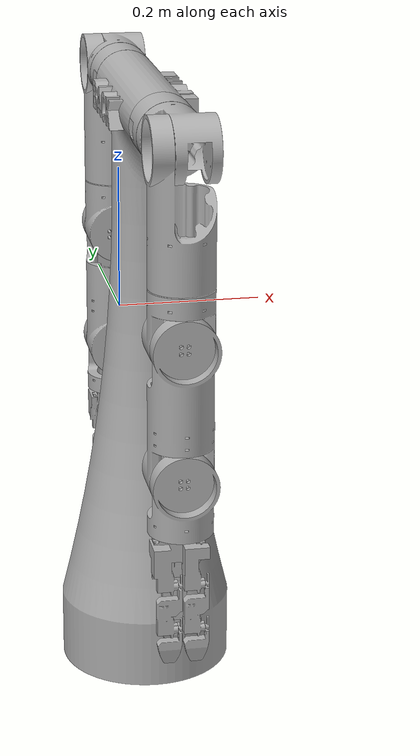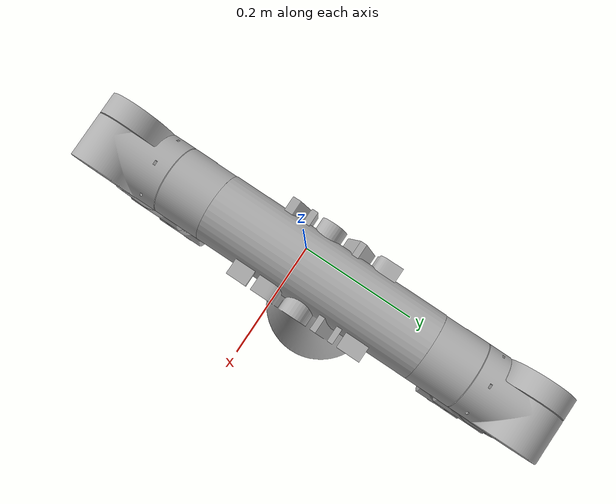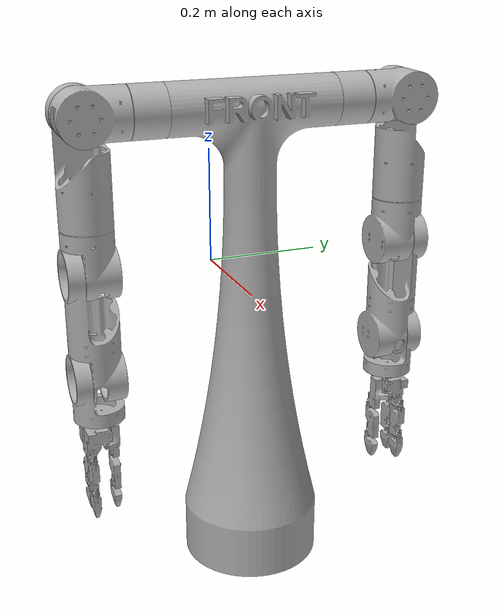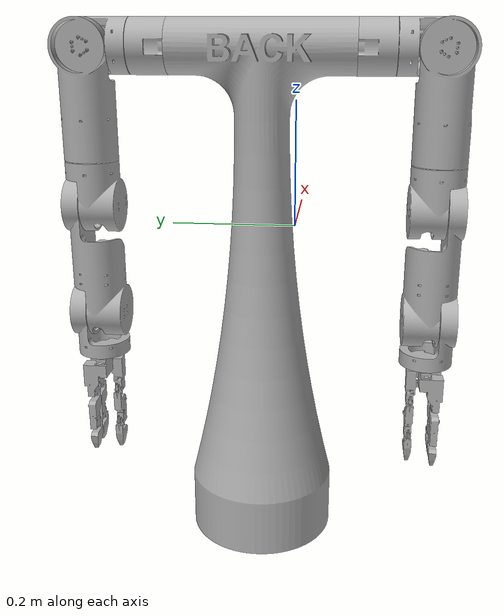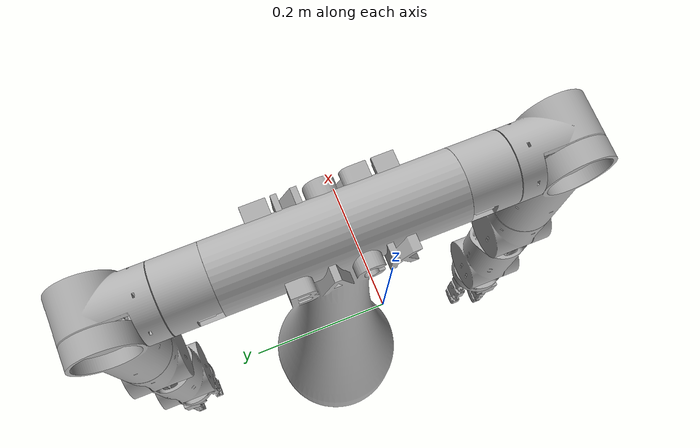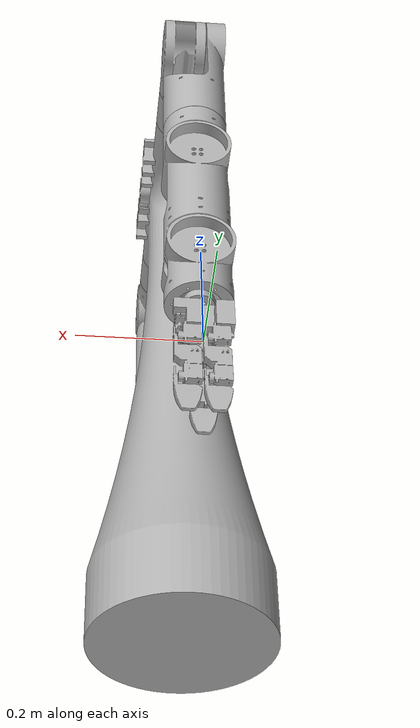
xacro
<?xml version="1.0" ?>
<robot name="Humanoid_Assembly_Beta" xmlns:xacro="http://www.ros.org/wiki/xacro">

<xacro:include filename="$(find Humanoid_Assembly_Beta_description)/urdf/materials.xacro" />
<xacro:include filename="$(find Humanoid_Assembly_Beta_description)/urdf/Humanoid_Assembly_Beta.trans" />
<xacro:include filename="$(find Humanoid_Assembly_Beta_description)/urdf/Humanoid_Assembly_Beta.gazebo" />
<link name="base_link">
  <inertial>
    <origin xyz="0.0450240768402649 0.05807866776862132 -0.2619627402680465" rpy="0 0 0"/>
    <mass value="18.851802819553264"/>
    <inertia ixx="1.424617" iyy="1.411084" izz="0.101714" ixy="2.5e-05" iyz="-2e-06" ixz="-0.000262"/>
  </inertial>
  <visual>
    <origin xyz="0 0 0" rpy="0 0 0"/>
    <geometry>
      <mesh filename="package://Humanoid_Assembly_Beta_description/meshes/base_link.stl" scale="0.001 0.001 0.001"/>
    </geometry>
    <material name="silver"/>
  </visual>
  <collision>
    <origin xyz="0 0 0" rpy="0 0 0"/>
    <geometry>
      <mesh filename="package://Humanoid_Assembly_Beta_description/meshes/base_link.stl" scale="0.001 0.001 0.001"/>
    </geometry>
  </collision>
</link>

<link name="R_shoulder_pitch_1">
  <inertial>
    <origin xyz="0.001431847493942949 -0.022701902408464134 2.2421150814300184e-06" rpy="0 0 0"/>
    <mass value="0.11098118237499341"/>
    <inertia ixx="0.000122" iyy="0.00016" izz="0.000115" ixy="-1e-06" iyz="-0.0" ixz="0.0"/>
  </inertial>
  <visual>
    <origin xyz="-0.045 0.091922 -0.277653" rpy="0 0 0"/>
    <geometry>
      <mesh filename="package://Humanoid_Assembly_Beta_description/meshes/R_shoulder_pitch_1.stl" scale="0.001 0.001 0.001"/>
    </geometry>
    <material name="silver"/>
  </visual>
  <collision>
    <origin xyz="-0.045 0.091922 -0.277653" rpy="0 0 0"/>
    <geometry>
      <mesh filename="package://Humanoid_Assembly_Beta_description/meshes/R_shoulder_pitch_1.stl" scale="0.001 0.001 0.001"/>
    </geometry>
  </collision>
</link>

<link name="R_shoulder_roll_1">
  <inertial>
    <origin xyz="0.013259930820804476 -0.4646711613933503 0.557509213360208" rpy="0 0 0"/>
    <mass value="0.2272336659585354"/>
    <inertia ixx="0.000452" iyy="0.000321" izz="0.000431" ixy="8.7e-05" iyz="1.7e-05" ixz="-1e-06"/>
  </inertial>
  <visual>
    <origin xyz="-0.045 -0.268078 0.277653" rpy="0 0 0"/>
    <geometry>
      <mesh filename="package://Humanoid_Assembly_Beta_description/meshes/R_shoulder_roll_1.stl" scale="0.001 0.001 0.001"/>
    </geometry>
    <material name="silver"/>
  </visual>
  <collision>
    <origin xyz="-0.045 -0.268078 0.277653" rpy="0 0 0"/>
    <geometry>
      <mesh filename="package://Humanoid_Assembly_Beta_description/meshes/R_shoulder_roll_1.stl" scale="0.001 0.001 0.001"/>
    </geometry>
  </collision>
</link>

<link name="R_shoulder_yaw_1">
  <inertial>
    <origin xyz="0.003502019027009695 -0.5819363490480399 0.470694036281082" rpy="0 0 0"/>
    <mass value="0.4082589760873575"/>
    <inertia ixx="0.001504" iyy="0.001506" izz="0.000502" ixy="-1.8e-05" iyz="-6e-06" ixz="0.000207"/>
  </inertial>
  <visual>
    <origin xyz="-0.03 -0.355078 0.277653" rpy="0 0 0"/>
    <geometry>
      <mesh filename="package://Humanoid_Assembly_Beta_description/meshes/R_shoulder_yaw_1.stl" scale="0.001 0.001 0.001"/>
    </geometry>
    <material name="silver"/>
  </visual>
  <collision>
    <origin xyz="-0.03 -0.355078 0.277653" rpy="0 0 0"/>
    <geometry>
      <mesh filename="package://Humanoid_Assembly_Beta_description/meshes/R_shoulder_yaw_1.stl" scale="0.001 0.001 0.001"/>
    </geometry>
  </collision>
</link>

<link name="R_upper_arm_1">
  <inertial>
    <origin xyz="-6.377857612129001e-06 -0.5714932783086877 0.14047083130053528" rpy="0 0 0"/>
    <mass value="0.2997392570576707"/>
    <inertia ixx="0.000527" iyy="0.000575" izz="0.000389" ixy="-0.0" iyz="0.000102" ixz="8e-06"/>
  </inertial>
  <visual>
    <origin xyz="-0.047 -0.355078 0.094653" rpy="0 0 0"/>
    <geometry>
      <mesh filename="package://Humanoid_Assembly_Beta_description/meshes/R_upper_arm_1.stl" scale="0.001 0.001 0.001"/>
    </geometry>
    <material name="silver"/>
  </visual>
  <collision>
    <origin xyz="-0.047 -0.355078 0.094653" rpy="0 0 0"/>
    <geometry>
      <mesh filename="package://Humanoid_Assembly_Beta_description/meshes/R_upper_arm_1.stl" scale="0.001 0.001 0.001"/>
    </geometry>
  </collision>
</link>

<link name="R_under_arm_1">
  <inertial>
    <origin xyz="-0.0028604109654717103 -0.6012341612438592 -0.06824420538162339" rpy="0 0 0"/>
    <mass value="0.49344130187842516"/>
    <inertia ixx="0.002561" iyy="0.002494" izz="0.000735" ixy="1.1e-05" iyz="0.000589" ixz="1.4e-05"/>
  </inertial>
  <visual>
    <origin xyz="-0.047 -0.370081 0.017653" rpy="0 0 0"/>
    <geometry>
      <mesh filename="package://Humanoid_Assembly_Beta_description/meshes/R_under_arm_1.stl" scale="0.001 0.001 0.001"/>
    </geometry>
    <material name="silver"/>
  </visual>
  <collision>
    <origin xyz="-0.047 -0.370081 0.017653" rpy="0 0 0"/>
    <geometry>
      <mesh filename="package://Humanoid_Assembly_Beta_description/meshes/R_under_arm_1.stl" scale="0.001 0.001 0.001"/>
    </geometry>
  </collision>
</link>

<link name="R_wrist_pitch_1">
  <inertial>
    <origin xyz="-0.0010012110795195595 -0.6098929657579838 -0.3809034584571842" rpy="0 0 0"/>
    <mass value="0.2202566374266439"/>
    <inertia ixx="0.00039" iyy="0.000411" izz="0.000247" ixy="0.0" iyz="8.3e-05" ixz="-0.0"/>
  </inertial>
  <visual>
    <origin xyz="-0.047 -0.370078 -0.171347" rpy="0 0 0"/>
    <geometry>
      <mesh filename="package://Humanoid_Assembly_Beta_description/meshes/R_wrist_pitch_1.stl" scale="0.001 0.001 0.001"/>
    </geometry>
    <material name="silver"/>
  </visual>
  <collision>
    <origin xyz="-0.047 -0.370078 -0.171347" rpy="0 0 0"/>
    <geometry>
      <mesh filename="package://Humanoid_Assembly_Beta_description/meshes/R_wrist_pitch_1.stl" scale="0.001 0.001 0.001"/>
    </geometry>
  </collision>
</link>

<link name="R_wrist_yaw_1">
  <inertial>
    <origin xyz="-0.005277979725099913 -0.010013884885821417 -0.03599913171465599" rpy="0 0 0"/>
    <mass value="0.12084160606563477"/>
    <inertia ixx="5.7e-05" iyy="9.5e-05" izz="6.8e-05" ixy="-1e-06" iyz="-1.2e-05" ixz="-2e-06"/>
  </inertial>
  <visual>
    <origin xyz="-0.046 0.226921 0.249347" rpy="0 0 0"/>
    <geometry>
      <mesh filename="package://Humanoid_Assembly_Beta_description/meshes/R_wrist_yaw_1.stl" scale="0.001 0.001 0.001"/>
    </geometry>
    <material name="silver"/>
  </visual>
  <collision>
    <origin xyz="-0.046 0.226921 0.249347" rpy="0 0 0"/>
    <geometry>
      <mesh filename="package://Humanoid_Assembly_Beta_description/meshes/R_wrist_yaw_1.stl" scale="0.001 0.001 0.001"/>
    </geometry>
  </collision>
</link>

<link name="R_rotation_base_1">
  <inertial>
    <origin xyz="-0.05678328727139368 -0.2730161482658747 0.1824344278145924" rpy="0 0 0"/>
    <mass value="0.02648965070604941"/>
    <inertia ixx="9e-06" iyy="1e-05" izz="2e-06" ixy="0.0" iyz="0.0" ixz="-1e-06"/>
  </inertial>
  <visual>
    <origin xyz="-0.106561 -0.068184 0.481181" rpy="0 0 0"/>
    <geometry>
      <mesh filename="package://Humanoid_Assembly_Beta_description/meshes/R_rotation_base_1.stl" scale="0.001 0.001 0.001"/>
    </geometry>
    <material name="silver"/>
  </visual>
  <collision>
    <origin xyz="-0.106561 -0.068184 0.481181" rpy="0 0 0"/>
    <geometry>
      <mesh filename="package://Humanoid_Assembly_Beta_description/meshes/R_rotation_base_1.stl" scale="0.001 0.001 0.001"/>
    </geometry>
  </collision>
</link>

<link name="R_finger_1_link1_1">
  <inertial>
    <origin xyz="-0.05181121522086529 -0.341682554166278 0.1379541156016607" rpy="0 0 0"/>
    <mass value="0.023444699208689017"/>
    <inertia ixx="8e-06" iyy="9e-06" izz="2e-06" ixy="-0.0" iyz="0.0" ixz="-1e-06"/>
  </inertial>
  <visual>
    <origin xyz="-0.114335 -0.094747 0.503268" rpy="0 0 0"/>
    <geometry>
      <mesh filename="package://Humanoid_Assembly_Beta_description/meshes/R_finger_1_link1_1.stl" scale="0.001 0.001 0.001"/>
    </geometry>
    <material name="silver"/>
  </visual>
  <collision>
    <origin xyz="-0.114335 -0.094747 0.503268" rpy="0 0 0"/>
    <geometry>
      <mesh filename="package://Humanoid_Assembly_Beta_description/meshes/R_finger_1_link1_1.stl" scale="0.001 0.001 0.001"/>
    </geometry>
  </collision>
</link>

<link name="R_finger_2_link1_1">
  <inertial>
    <origin xyz="-0.05181121522086536 -0.34168255416627785 0.1379541156016606" rpy="0 0 0"/>
    <mass value="0.023444699208689017"/>
    <inertia ixx="8e-06" iyy="9e-06" izz="2e-06" ixy="-0.0" iyz="0.0" ixz="-1e-06"/>
  </inertial>
  <visual>
    <origin xyz="-0.077335 -0.094747 0.503268" rpy="0 0 0"/>
    <geometry>
      <mesh filename="package://Humanoid_Assembly_Beta_description/meshes/R_finger_2_link1_1.stl" scale="0.001 0.001 0.001"/>
    </geometry>
    <material name="silver"/>
  </visual>
  <collision>
    <origin xyz="-0.077335 -0.094747 0.503268" rpy="0 0 0"/>
    <geometry>
      <mesh filename="package://Humanoid_Assembly_Beta_description/meshes/R_finger_2_link1_1.stl" scale="0.001 0.001 0.001"/>
    </geometry>
  </collision>
</link>

<link name="R_finger_3_link1_1">
  <inertial>
    <origin xyz="0.20984516707626316 -0.2851357788580128 -0.030044640390408106" rpy="0 0 0"/>
    <mass value="0.028756392059338477"/>
    <inertia ixx="9e-06" iyy="1.1e-05" izz="3e-06" ixy="-0.0" iyz="-0.0" ixz="2e-06"/>
  </inertial>
  <visual>
    <origin xyz="0.166876 -0.081319 0.332845" rpy="0 0 0"/>
    <geometry>
      <mesh filename="package://Humanoid_Assembly_Beta_description/meshes/R_finger_3_link1_1.stl" scale="0.001 0.001 0.001"/>
    </geometry>
    <material name="silver"/>
  </visual>
  <collision>
    <origin xyz="0.166876 -0.081319 0.332845" rpy="0 0 0"/>
    <geometry>
      <mesh filename="package://Humanoid_Assembly_Beta_description/meshes/R_finger_3_link1_1.stl" scale="0.001 0.001 0.001"/>
    </geometry>
  </collision>
</link>

<link name="R_finger_1_link2_1">
  <inertial>
    <origin xyz="0.31571623923205216 -0.3926680363260272 0.03131139756781637" rpy="0 0 0"/>
    <mass value="0.011311880427034342"/>
    <inertia ixx="1e-06" iyy="2e-06" izz="1e-06" ixy="-0.0" iyz="-0.0" ixz="-0.0"/>
  </inertial>
  <visual>
    <origin xyz="0.249986 -0.145747 0.445853" rpy="0 0 0"/>
    <geometry>
      <mesh filename="package://Humanoid_Assembly_Beta_description/meshes/R_finger_1_link2_1.stl" scale="0.001 0.001 0.001"/>
    </geometry>
    <material name="silver"/>
  </visual>
  <collision>
    <origin xyz="0.249986 -0.145747 0.445853" rpy="0 0 0"/>
    <geometry>
      <mesh filename="package://Humanoid_Assembly_Beta_description/meshes/R_finger_1_link2_1.stl" scale="0.001 0.001 0.001"/>
    </geometry>
  </collision>
</link>

<link name="R_finger_2_link2_1">
  <inertial>
    <origin xyz="0.31571623923205216 -0.3926680363260271 -0.005688602432183776" rpy="0 0 0"/>
    <mass value="0.011311880427034342"/>
    <inertia ixx="1e-06" iyy="2e-06" izz="1e-06" ixy="-0.0" iyz="-0.0" ixz="-0.0"/>
  </inertial>
  <visual>
    <origin xyz="0.286986 -0.145747 0.408853" rpy="0 0 0"/>
    <geometry>
      <mesh filename="package://Humanoid_Assembly_Beta_description/meshes/R_finger_2_link2_1.stl" scale="0.001 0.001 0.001"/>
    </geometry>
    <material name="silver"/>
  </visual>
  <collision>
    <origin xyz="0.286986 -0.145747 0.408853" rpy="0 0 0"/>
    <geometry>
      <mesh filename="package://Humanoid_Assembly_Beta_description/meshes/R_finger_2_link2_1.stl" scale="0.001 0.001 0.001"/>
    </geometry>
  </collision>
</link>

<link name="R_finger_3_link2_1">
  <inertial>
    <origin xyz="-0.27279232430265155 0.39265235460993175 -0.021463395633060933" rpy="0 0 0"/>
    <mass value="0.011442120558853228"/>
    <inertia ixx="2e-06" iyy="2e-06" izz="1e-06" ixy="-0.0" iyz="0.0" ixz="0.0"/>
  </inertial>
  <visual>
    <origin xyz="-0.312677 0.596486 0.392745" rpy="0 0 0"/>
    <geometry>
      <mesh filename="package://Humanoid_Assembly_Beta_description/meshes/R_finger_3_link2_1.stl" scale="0.001 0.001 0.001"/>
    </geometry>
    <material name="silver"/>
  </visual>
  <collision>
    <origin xyz="-0.312677 0.596486 0.392745" rpy="0 0 0"/>
    <geometry>
      <mesh filename="package://Humanoid_Assembly_Beta_description/meshes/R_finger_3_link2_1.stl" scale="0.001 0.001 0.001"/>
    </geometry>
  </collision>
</link>

<link name="L_shoulder_pitch_1">
  <inertial>
    <origin xyz="0.0014318676544724726 0.022702466545756 2.1485748469829424e-06" rpy="0 0 0"/>
    <mass value="0.11763993299203501"/>
    <inertia ixx="0.000129" iyy="0.000169" izz="0.000122" ixy="1e-06" iyz="0.0" ixz="0.0"/>
  </inertial>
  <visual>
    <origin xyz="-0.045 -0.208078 -0.277653" rpy="0 0 0"/>
    <geometry>
      <mesh filename="package://Humanoid_Assembly_Beta_description/meshes/L_shoulder_pitch_1.stl" scale="0.001 0.001 0.001"/>
    </geometry>
    <material name="silver"/>
  </visual>
  <collision>
    <origin xyz="-0.045 -0.208078 -0.277653" rpy="0 0 0"/>
    <geometry>
      <mesh filename="package://Humanoid_Assembly_Beta_description/meshes/L_shoulder_pitch_1.stl" scale="0.001 0.001 0.001"/>
    </geometry>
  </collision>
</link>

<link name="L_shoulder_roll_1">
  <inertial>
    <origin xyz="0.013259933663725063 0.04467166637741321 0.002203215179457596" rpy="0 0 0"/>
    <mass value="0.22723337829216886"/>
    <inertia ixx="0.000452" iyy="0.000321" izz="0.000431" ixy="-8.7e-05" iyz="-1.7e-05" ixz="-1e-06"/>
  </inertial>
  <visual>
    <origin xyz="-0.045 -0.268078 -0.277653" rpy="0 0 0"/>
    <geometry>
      <mesh filename="package://Humanoid_Assembly_Beta_description/meshes/L_shoulder_roll_1.stl" scale="0.001 0.001 0.001"/>
    </geometry>
    <material name="silver"/>
  </visual>
  <collision>
    <origin xyz="-0.045 -0.268078 -0.277653" rpy="0 0 0"/>
    <geometry>
      <mesh filename="package://Humanoid_Assembly_Beta_description/meshes/L_shoulder_roll_1.stl" scale="0.001 0.001 0.001"/>
    </geometry>
  </collision>
</link>

<link name="L_shoulder_yaw_1">
  <inertial>
    <origin xyz="0.0035020148983803054 0.007936895047892523 -0.08461195404128696" rpy="0 0 0"/>
    <mass value="0.4082589367033056"/>
    <inertia ixx="0.001504" iyy="0.001506" izz="0.000502" ixy="1.8e-05" iyz="6e-06" ixz="0.000207"/>
  </inertial>
  <visual>
    <origin xyz="-0.03 -0.335078 -0.277653" rpy="0 0 0"/>
    <geometry>
      <mesh filename="package://Humanoid_Assembly_Beta_description/meshes/L_shoulder_yaw_1.stl" scale="0.001 0.001 0.001"/>
    </geometry>
    <material name="silver"/>
  </visual>
  <collision>
    <origin xyz="-0.03 -0.335078 -0.277653" rpy="0 0 0"/>
    <geometry>
      <mesh filename="package://Humanoid_Assembly_Beta_description/meshes/L_shoulder_yaw_1.stl" scale="0.001 0.001 0.001"/>
    </geometry>
  </collision>
</link>

<link name="L_upper_arm_1">
  <inertial>
    <origin xyz="-6.377857726967695e-06 -0.0025061759533775985 -0.048835168703810536" rpy="0 0 0"/>
    <mass value="0.2997392570904695"/>
    <inertia ixx="0.000527" iyy="0.000575" izz="0.000389" ixy="0.0" iyz="-0.000102" ixz="8e-06"/>
  </inertial>
  <visual>
    <origin xyz="-0.047 -0.335078 -0.094653" rpy="0 0 0"/>
    <geometry>
      <mesh filename="package://Humanoid_Assembly_Beta_description/meshes/L_upper_arm_1.stl" scale="0.001 0.001 0.001"/>
    </geometry>
    <material name="silver"/>
  </visual>
  <collision>
    <origin xyz="-0.047 -0.335078 -0.094653" rpy="0 0 0"/>
    <geometry>
      <mesh filename="package://Humanoid_Assembly_Beta_description/meshes/L_upper_arm_1.stl" scale="0.001 0.001 0.001"/>
    </geometry>
  </collision>
</link>

<link name="L_under_arm_1">
  <inertial>
    <origin xyz="-0.0028604116357154735 -0.0027705949647548467 -0.10339720142397496" rpy="0 0 0"/>
    <mass value="0.49344130195861524"/>
    <inertia ixx="0.002561" iyy="0.002494" izz="0.000735" ixy="-1.1e-05" iyz="-0.000589" ixz="1.4e-05"/>
  </inertial>
  <visual>
    <origin xyz="-0.047 -0.350078 -0.017653" rpy="0 0 0"/>
    <geometry>
      <mesh filename="package://Humanoid_Assembly_Beta_description/meshes/L_under_arm_1.stl" scale="0.001 0.001 0.001"/>
    </geometry>
    <material name="silver"/>
  </visual>
  <collision>
    <origin xyz="-0.047 -0.350078 -0.017653" rpy="0 0 0"/>
    <geometry>
      <mesh filename="package://Humanoid_Assembly_Beta_description/meshes/L_under_arm_1.stl" scale="0.001 0.001 0.001"/>
    </geometry>
  </collision>
</link>

<link name="L_wrist_pitch_1">
  <inertial>
    <origin xyz="-0.0010012124206277284 0.007891209552276901 -0.03820944663655462" rpy="0 0 0"/>
    <mass value="0.2202566374266439"/>
    <inertia ixx="0.00039" iyy="0.000411" izz="0.000247" ixy="-0.0" iyz="-8.3e-05" ixz="-0.0"/>
  </inertial>
  <visual>
    <origin xyz="-0.047 -0.348078 0.171041" rpy="0 0 0"/>
    <geometry>
      <mesh filename="package://Humanoid_Assembly_Beta_description/meshes/L_wrist_pitch_1.stl" scale="0.001 0.001 0.001"/>
    </geometry>
    <material name="silver"/>
  </visual>
  <collision>
    <origin xyz="-0.047 -0.348078 0.171041" rpy="0 0 0"/>
    <geometry>
      <mesh filename="package://Humanoid_Assembly_Beta_description/meshes/L_wrist_pitch_1.stl" scale="0.001 0.001 0.001"/>
    </geometry>
  </collision>
</link>

<link name="L_wrist_yaw_1">
  <inertial>
    <origin xyz="-0.005662320002585895 0.010787871196507703 -0.035700892848775145" rpy="0 0 0"/>
    <mass value="0.09961465068967049"/>
    <inertia ixx="4.4e-05" iyy="7.7e-05" izz="5.8e-05" ixy="1e-06" iyz="9e-06" ixz="-2e-06"/>
  </inertial>
  <visual>
    <origin xyz="-0.046 -0.343075 0.249041" rpy="0 0 0"/>
    <geometry>
      <mesh filename="package://Humanoid_Assembly_Beta_description/meshes/L_wrist_yaw_1.stl" scale="0.001 0.001 0.001"/>
    </geometry>
    <material name="silver"/>
  </visual>
  <collision>
    <origin xyz="-0.046 -0.343075 0.249041" rpy="0 0 0"/>
    <geometry>
      <mesh filename="package://Humanoid_Assembly_Beta_description/meshes/L_wrist_yaw_1.stl" scale="0.001 0.001 0.001"/>
    </geometry>
  </collision>
</link>

<link name="L_rotation_base_1">
  <inertial>
    <origin xyz="-0.05622429033214489 -0.3167517099822866 -0.38092097224905075" rpy="0 0 0"/>
    <mass value="0.023316272305764475"/>
    <inertia ixx="8e-06" iyy="9e-06" izz="2e-06" ixy="-0.0" iyz="-0.0" ixz="-1e-06"/>
  </inertial>
  <visual>
    <origin xyz="-0.106561 -0.637874 -0.084947" rpy="0 0 0"/>
    <geometry>
      <mesh filename="package://Humanoid_Assembly_Beta_description/meshes/L_rotation_base_1.stl" scale="0.001 0.001 0.001"/>
    </geometry>
    <material name="silver"/>
  </visual>
  <collision>
    <origin xyz="-0.106561 -0.637874 -0.084947" rpy="0 0 0"/>
    <geometry>
      <mesh filename="package://Humanoid_Assembly_Beta_description/meshes/L_rotation_base_1.stl" scale="0.001 0.001 0.001"/>
    </geometry>
  </collision>
</link>

<link name="L_finger_1_link1_2">
  <inertial>
    <origin xyz="-0.05144863834858844 -0.3013449293913215 -0.4694476391060324" rpy="0 0 0"/>
    <mass value="0.020271320797791224"/>
    <inertia ixx="6e-06" iyy="8e-06" izz="2e-06" ixy="0.0" iyz="-0.0" ixz="-1e-06"/>
  </inertial>
  <visual>
    <origin xyz="-0.114335 -0.664437 -0.107034" rpy="0 0 0"/>
    <geometry>
      <mesh filename="package://Humanoid_Assembly_Beta_description/meshes/L_finger_1_link1_2.stl" scale="0.001 0.001 0.001"/>
    </geometry>
    <material name="silver"/>
  </visual>
  <collision>
    <origin xyz="-0.114335 -0.664437 -0.107034" rpy="0 0 0"/>
    <geometry>
      <mesh filename="package://Humanoid_Assembly_Beta_description/meshes/L_finger_1_link1_2.stl" scale="0.001 0.001 0.001"/>
    </geometry>
  </collision>
</link>

<link name="L_finger_2_link1_1">
  <inertial>
    <origin xyz="-0.05144863837710306 -0.3013449293789549 -0.4694476388856015" rpy="0 0 0"/>
    <mass value="0.02027132065501612"/>
    <inertia ixx="6e-06" iyy="8e-06" izz="2e-06" ixy="0.0" iyz="-0.0" ixz="-1e-06"/>
  </inertial>
  <visual>
    <origin xyz="-0.077335 -0.664437 -0.107034" rpy="0 0 0"/>
    <geometry>
      <mesh filename="package://Humanoid_Assembly_Beta_description/meshes/L_finger_2_link1_1.stl" scale="0.001 0.001 0.001"/>
    </geometry>
    <material name="silver"/>
  </visual>
  <collision>
    <origin xyz="-0.077335 -0.664437 -0.107034" rpy="0 0 0"/>
    <geometry>
      <mesh filename="package://Humanoid_Assembly_Beta_description/meshes/L_finger_2_link1_1.stl" scale="0.001 0.001 0.001"/>
    </geometry>
  </collision>
</link>

<link name="L_finger_3_link1_2">
  <inertial>
    <origin xyz="-0.31405421300210046 -0.35786290130399645 -0.02985870268087204" rpy="0 0 0"/>
    <mass value="0.020271320797791374"/>
    <inertia ixx="6e-06" iyy="8e-06" izz="2e-06" ixy="0.0" iyz="0.0" ixz="1e-06"/>
  </inertial>
  <visual>
    <origin xyz="-0.356946 -0.677834 0.332539" rpy="0 0 0"/>
    <geometry>
      <mesh filename="package://Humanoid_Assembly_Beta_description/meshes/L_finger_3_link1_2.stl" scale="0.001 0.001 0.001"/>
    </geometry>
    <material name="silver"/>
  </visual>
  <collision>
    <origin xyz="-0.356946 -0.677834 0.332539" rpy="0 0 0"/>
    <geometry>
      <mesh filename="package://Humanoid_Assembly_Beta_description/meshes/L_finger_3_link1_2.stl" scale="0.001 0.001 0.001"/>
    </geometry>
  </collision>
</link>

<link name="L_finger_1_link2_1">
  <inertial>
    <origin xyz="-0.2942797621090531 -0.38036171987967277 0.03131140938844579" rpy="0 0 0"/>
    <mass value="0.01131188042703432"/>
    <inertia ixx="1e-06" iyy="2e-06" izz="1e-06" ixy="-0.0" iyz="-0.0" ixz="-0.0"/>
  </inertial>
  <visual>
    <origin xyz="-0.36001 -0.743437 0.445547" rpy="0 0 0"/>
    <geometry>
      <mesh filename="package://Humanoid_Assembly_Beta_description/meshes/L_finger_1_link2_1.stl" scale="0.001 0.001 0.001"/>
    </geometry>
    <material name="silver"/>
  </visual>
  <collision>
    <origin xyz="-0.36001 -0.743437 0.445547" rpy="0 0 0"/>
    <geometry>
      <mesh filename="package://Humanoid_Assembly_Beta_description/meshes/L_finger_1_link2_1.stl" scale="0.001 0.001 0.001"/>
    </geometry>
  </collision>
</link>

<link name="L_finger_2_link2_1">
  <inertial>
    <origin xyz="-0.29427976210905304 -0.3803617198796725 -0.005688590611554467" rpy="0 0 0"/>
    <mass value="0.01131188042703432"/>
    <inertia ixx="1e-06" iyy="2e-06" izz="1e-06" ixy="-0.0" iyz="-0.0" ixz="-0.0"/>
  </inertial>
  <visual>
    <origin xyz="-0.32301 -0.743437 0.408547" rpy="0 0 0"/>
    <geometry>
      <mesh filename="package://Humanoid_Assembly_Beta_description/meshes/L_finger_2_link2_1.stl" scale="0.001 0.001 0.001"/>
    </geometry>
    <material name="silver"/>
  </visual>
  <collision>
    <origin xyz="-0.32301 -0.743437 0.408547" rpy="0 0 0"/>
    <geometry>
      <mesh filename="package://Humanoid_Assembly_Beta_description/meshes/L_finger_2_link2_1.stl" scale="0.001 0.001 0.001"/>
    </geometry>
  </collision>
</link>

<link name="L_finger_3_link2_3">
  <inertial>
    <origin xyz="0.2511929107583642 0.38034588918436096 -0.021780654186393356" rpy="0 0 0"/>
    <mass value="0.011311880427034335"/>
    <inertia ixx="1e-06" iyy="2e-06" izz="1e-06" ixy="0.0" iyz="-0.0" ixz="0.0"/>
  </inertial>
  <visual>
    <origin xyz="0.211145 0.060358 0.392439" rpy="0 0 0"/>
    <geometry>
      <mesh filename="package://Humanoid_Assembly_Beta_description/meshes/L_finger_3_link2_3.stl" scale="0.001 0.001 0.001"/>
    </geometry>
    <material name="silver"/>
  </visual>
  <collision>
    <origin xyz="0.211145 0.060358 0.392439" rpy="0 0 0"/>
    <geometry>
      <mesh filename="package://Humanoid_Assembly_Beta_description/meshes/L_finger_3_link2_3.stl" scale="0.001 0.001 0.001"/>
    </geometry>
  </collision>
</link>

<joint name="base_link_to_R_shoulder_pitch" type="fixed">
  <origin xyz="0.045 -0.091922 0.277653" rpy="0 0 0"/>
  <parent link="base_link"/>
  <child link="R_shoulder_pitch_1"/>
</joint>

<joint name="R_shoulder_pitch_to_R_shoulder_roll" type="revolute">
  <origin xyz="0.0 0.36 -0.555306" rpy="0 0 0"/>
  <parent link="R_shoulder_pitch_1"/>
  <child link="R_shoulder_roll_1"/>
  <axis xyz="-0.0 -1.0 0.0"/>
  <limit upper="1.570796" lower="-1.570796" effort="100" velocity="100"/>
</joint>

<joint name="R_shoulder_roll_to_R_shoulder_yaw" type="revolute">
  <origin xyz="-0.015 0.087 0.0" rpy="0 0 0"/>
  <parent link="R_shoulder_roll_1"/>
  <child link="R_shoulder_yaw_1"/>
  <axis xyz="-1.0 0.0 0.0"/>
  <limit upper="1.570796" lower="-0.043633" effort="100" velocity="100"/>
</joint>

<joint name="R_shoulder_yaw_to_R_upper_arm" type="revolute">
  <origin xyz="0.017 0.0 0.183" rpy="0 0 0"/>
  <parent link="R_shoulder_yaw_1"/>
  <child link="R_upper_arm_1"/>
  <axis xyz="-0.0 -0.0 -1.0"/>
  <limit upper="6.283185" lower="0.0" effort="100" velocity="100"/>
</joint>

<joint name="R_upper_arm_to_R_under_arm" type="revolute">
  <origin xyz="0.0 0.015003 0.077" rpy="0 0 0"/>
  <parent link="R_upper_arm_1"/>
  <child link="R_under_arm_1"/>
  <axis xyz="0.0 -1.0 -0.0"/>
  <limit upper="1.570796" lower="-1.570796" effort="100" velocity="100"/>
</joint>

<joint name="R_under_arm_to_R_wrist_pitch" type="revolute">
  <origin xyz="0.0 -3e-06 0.189" rpy="0 0 0"/>
  <parent link="R_under_arm_1"/>
  <child link="R_wrist_pitch_1"/>
  <axis xyz="0.0 -1.0 -0.0"/>
  <limit upper="1.570796" lower="-1.570796" effort="100" velocity="100"/>
</joint>

<joint name="R_wrist_pitch_to_R_wrist_yaw" type="revolute">
  <origin xyz="-0.001 -0.596999 -0.420694" rpy="0 0 0"/>
  <parent link="R_wrist_pitch_1"/>
  <child link="R_wrist_yaw_1"/>
  <axis xyz="0.0 -0.0 -1.0"/>
  <limit upper="2.094395" lower="-2.094395" effort="100" velocity="100"/>
</joint>

<joint name="R_wrist_yaw_to_R_rotation_base" type="revolute">
  <origin xyz="0.060561 0.295105 -0.231834" rpy="0 0 0"/>
  <parent link="R_wrist_yaw_1"/>
  <child link="R_rotation_base_1"/>
  <axis xyz="0.0 -0.0 -1.0"/>
  <limit upper="3.141593" lower="0.0" effort="100" velocity="100"/>
</joint>

<joint name="R_wrist_yaw_to_R_finger_1_link1" type="revolute">
  <origin xyz="0.068335 0.321668 -0.253921" rpy="0 0 0"/>
  <parent link="R_wrist_yaw_1"/>
  <child link="R_finger_1_link1_1"/>
  <axis xyz="1.0 0.0 0.0"/>
  <limit upper="1.570796" lower="-1.570796" effort="100" velocity="100"/>
</joint>

<joint name="R_wrist_yaw_to_R_finger_2_link1" type="revolute">
  <origin xyz="0.031335 0.321668 -0.253921" rpy="0 0 0"/>
  <parent link="R_wrist_yaw_1"/>
  <child link="R_finger_2_link1_1"/>
  <axis xyz="1.0 0.0 0.0"/>
  <limit upper="1.570796" lower="-1.570796" effort="100" velocity="100"/>
</joint>

<joint name="R_rotation_base_to_R_finger_3_link1" type="revolute">
  <origin xyz="-0.273437 0.013135 0.148336" rpy="0 0 0"/>
  <parent link="R_rotation_base_1"/>
  <child link="R_finger_3_link1_1"/>
  <axis xyz="-1.0 0.0 -0.0"/>
  <limit upper="1.570796" lower="-1.570796" effort="100" velocity="100"/>
</joint>

<joint name="R_finger_1_link1_to_R_finger_1_link2" type="revolute">
  <origin xyz="-0.364321 0.051 0.057415" rpy="0 0 0"/>
  <parent link="R_finger_1_link1_1"/>
  <child link="R_finger_1_link2_1"/>
  <axis xyz="1.0 0.0 0.0"/>
  <limit upper="2.094395" lower="0.0" effort="100" velocity="100"/>
</joint>

<joint name="R_finger_2_link1_to_R_finger_2_link2" type="revolute">
  <origin xyz="-0.364321 0.051 0.094415" rpy="0 0 0"/>
  <parent link="R_finger_2_link1_1"/>
  <child link="R_finger_2_link2_1"/>
  <axis xyz="1.0 0.0 0.0"/>
  <limit upper="2.094395" lower="0.0" effort="100" velocity="100"/>
</joint>

<joint name="R_finger_3_link1_to_R_finger_3_link2" type="revolute">
  <origin xyz="0.479553 -0.677805 -0.0599" rpy="0 0 0"/>
  <parent link="R_finger_3_link1_1"/>
  <child link="R_finger_3_link2_1"/>
  <axis xyz="-1.0 0.0 -0.0"/>
  <limit upper="2.094395" lower="0.0" effort="100" velocity="100"/>
</joint>

<joint name="base_link_to_L_shoulder_pitch" type="fixed">
  <origin xyz="0.045 0.208078 0.277653" rpy="0 0 0"/>
  <parent link="base_link"/>
  <child link="L_shoulder_pitch_1"/>
</joint>

<joint name="L_shoulder_pitch_to_L_shoulder_roll" type="revolute">
  <origin xyz="0.0 0.06 0.0" rpy="0 0 0"/>
  <parent link="L_shoulder_pitch_1"/>
  <child link="L_shoulder_roll_1"/>
  <axis xyz="0.0 -1.0 -0.0"/>
  <limit upper="1.570796" lower="-1.570796" effort="100" velocity="100"/>
</joint>

<joint name="L_shoulder_roll_to_L_shoulder_yaw" type="revolute">
  <origin xyz="-0.015 0.067 0.0" rpy="0 0 0"/>
  <parent link="L_shoulder_roll_1"/>
  <child link="L_shoulder_yaw_1"/>
  <axis xyz="1.0 0.0 0.0"/>
  <limit upper="1.570796" lower="-0.043633" effort="100" velocity="100"/>
</joint>

<joint name="L_shoulder_yaw_to_L_upper_arm" type="revolute">
  <origin xyz="0.017 0.0 -0.183" rpy="0 0 0"/>
  <parent link="L_shoulder_yaw_1"/>
  <child link="L_upper_arm_1"/>
  <axis xyz="0.0 -0.0 1.0"/>
  <limit upper="6.283185" lower="0.0" effort="100" velocity="100"/>
</joint>

<joint name="L_upper_arm_to_L_under_arm" type="revolute">
  <origin xyz="0.0 0.015 -0.077" rpy="0 0 0"/>
  <parent link="L_upper_arm_1"/>
  <child link="L_under_arm_1"/>
  <axis xyz="-0.0 -1.0 -0.0"/>
  <limit upper="1.570796" lower="-1.570796" effort="100" velocity="100"/>
</joint>

<joint name="L_under_arm_to_L_wrist_pitch" type="revolute">
  <origin xyz="0.0 -0.002 -0.188694" rpy="0 0 0"/>
  <parent link="L_under_arm_1"/>
  <child link="L_wrist_pitch_1"/>
  <axis xyz="-0.0 -1.0 0.0"/>
  <limit upper="1.570796" lower="-1.570796" effort="100" velocity="100"/>
</joint>

<joint name="L_wrist_pitch_to_L_wrist_yaw" type="revolute">
  <origin xyz="-0.001 -0.005003 -0.078" rpy="0 0 0"/>
  <parent link="L_wrist_pitch_1"/>
  <child link="L_wrist_yaw_1"/>
  <axis xyz="-0.0 -0.0 1.0"/>
  <limit upper="2.094395" lower="-2.094395" effort="100" velocity="100"/>
</joint>

<joint name="L_wrist_yaw_to_L_rotation_base" type="revolute">
  <origin xyz="0.060561 0.294799 0.333988" rpy="0 0 0"/>
  <parent link="L_wrist_yaw_1"/>
  <child link="L_rotation_base_1"/>
  <axis xyz="-0.0 -0.0 1.0"/>
  <limit upper="3.141593" lower="0.0" effort="100" velocity="100"/>
</joint>

<joint name="L_wrist_yaw_to_L_finger_1_link1" type="revolute">
  <origin xyz="0.068335 0.321362 0.356075" rpy="0 0 0"/>
  <parent link="L_wrist_yaw_1"/>
  <child link="L_finger_1_link1_2"/>
  <axis xyz="-1.0 0.0 -0.0"/>
  <limit upper="1.570796" lower="-1.570796" effort="100" velocity="100"/>
</joint>

<joint name="L_wrist_yaw_to_L_finger_2_link1" type="revolute">
  <origin xyz="0.031335 0.321362 0.356075" rpy="0 0 0"/>
  <parent link="L_wrist_yaw_1"/>
  <child link="L_finger_2_link1_1"/>
  <axis xyz="-1.0 0.0 -0.0"/>
  <limit upper="1.570796" lower="-1.570796" effort="100" velocity="100"/>
</joint>

<joint name="L_rotation_base_to_L_finger_3_link1" type="revolute">
  <origin xyz="0.250385 0.03996 -0.417486" rpy="0 0 0"/>
  <parent link="L_rotation_base_1"/>
  <child link="L_finger_3_link1_2"/>
  <axis xyz="1.0 0.0 0.0"/>
  <limit upper="1.570796" lower="-1.570796" effort="100" velocity="100"/>
</joint>

<joint name="L_finger_1_link1_to_L_finger_1_link2" type="revolute">
  <origin xyz="0.245675 0.079 -0.552581" rpy="0 0 0"/>
  <parent link="L_finger_1_link1_2"/>
  <child link="L_finger_1_link2_1"/>
  <axis xyz="-1.0 0.0 -0.0"/>
  <limit upper="1.570796" lower="-1.570796" effort="100" velocity="100"/>
</joint>

<joint name="L_finger_2_link1_to_L_finger_2_link2" type="revolute">
  <origin xyz="0.245675 0.079 -0.515581" rpy="0 0 0"/>
  <parent link="L_finger_2_link1_1"/>
  <child link="L_finger_2_link2_1"/>
  <axis xyz="-1.0 0.0 -0.0"/>
  <limit upper="1.570796" lower="-1.570796" effort="100" velocity="100"/>
</joint>

<joint name="L_finger_3_link1_to_L_finger_3_link2" type="revolute">
  <origin xyz="-0.568091 -0.738192 -0.0599" rpy="0 0 0"/>
  <parent link="L_finger_3_link1_2"/>
  <child link="L_finger_3_link2_3"/>
  <axis xyz="1.0 0.0 0.0"/>
  <limit upper="1.570796" lower="-1.570796" effort="100" velocity="100"/>
</joint>

</robot>

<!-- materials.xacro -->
<robot name="Humanoid_Assembly_Beta" xmlns:xacro="http://www.ros.org/wiki/xacro" >

<material name="silver">
  <color rgba="0.700 0.700 0.700 1.000"/>
</material>

</robot>

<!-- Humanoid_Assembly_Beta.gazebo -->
<robot name="Humanoid_Assembly_Beta" xmlns:xacro="http://www.ros.org/wiki/xacro" >

<xacro:property name="body_color" value="Gazebo/Silver" />

<gazebo>
  <plugin name="control" filename="libgazebo_ros_control.so"/>
</gazebo>
<gazebo reference="base_link">
  <material>${body_color}</material>
  <mu1>0.2</mu1>
  <mu2>0.2</mu2>
  <selfCollide>true</selfCollide>
  <gravity>true</gravity>
</gazebo>

<gazebo reference="R_shoulder_pitch_1">
  <material>${body_color}</material>
  <mu1>0.2</mu1>
  <mu2>0.2</mu2>
  <selfCollide>true</selfCollide>
</gazebo>

<gazebo reference="R_shoulder_roll_1">
  <material>${body_color}</material>
  <mu1>0.2</mu1>
  <mu2>0.2</mu2>
  <selfCollide>true</selfCollide>
</gazebo>

<gazebo reference="R_shoulder_yaw_1">
  <material>${body_color}</material>
  <mu1>0.2</mu1>
  <mu2>0.2</mu2>
  <selfCollide>true</selfCollide>
</gazebo>

<gazebo reference="R_upper_arm_1">
  <material>${body_color}</material>
  <mu1>0.2</mu1>
  <mu2>0.2</mu2>
  <selfCollide>true</selfCollide>
</gazebo>

<gazebo reference="R_under_arm_1">
  <material>${body_color}</material>
  <mu1>0.2</mu1>
  <mu2>0.2</mu2>
  <selfCollide>true</selfCollide>
</gazebo>

<gazebo reference="R_wrist_pitch_1">
  <material>${body_color}</material>
  <mu1>0.2</mu1>
  <mu2>0.2</mu2>
  <selfCollide>true</selfCollide>
</gazebo>

<gazebo reference="R_wrist_yaw_1">
  <material>${body_color}</material>
  <mu1>0.2</mu1>
  <mu2>0.2</mu2>
  <selfCollide>true</selfCollide>
</gazebo>

<gazebo reference="R_rotation_base_1">
  <material>${body_color}</material>
  <mu1>0.2</mu1>
  <mu2>0.2</mu2>
  <selfCollide>true</selfCollide>
</gazebo>

<gazebo reference="R_finger_1_link1_1">
  <material>${body_color}</material>
  <mu1>0.2</mu1>
  <mu2>0.2</mu2>
  <selfCollide>true</selfCollide>
</gazebo>

<gazebo reference="R_finger_2_link1_1">
  <material>${body_color}</material>
  <mu1>0.2</mu1>
  <mu2>0.2</mu2>
  <selfCollide>true</selfCollide>
</gazebo>

<gazebo reference="R_finger_3_link1_1">
  <material>${body_color}</material>
  <mu1>0.2</mu1>
  <mu2>0.2</mu2>
  <selfCollide>true</selfCollide>
</gazebo>

<gazebo reference="R_finger_1_link2_1">
  <material>${body_color}</material>
  <mu1>0.2</mu1>
  <mu2>0.2</mu2>
  <selfCollide>true</selfCollide>
</gazebo>

<gazebo reference="R_finger_2_link2_1">
  <material>${body_color}</material>
  <mu1>0.2</mu1>
  <mu2>0.2</mu2>
  <selfCollide>true</selfCollide>
</gazebo>

<gazebo reference="R_finger_3_link2_1">
  <material>${body_color}</material>
  <mu1>0.2</mu1>
  <mu2>0.2</mu2>
  <selfCollide>true</selfCollide>
</gazebo>

<gazebo reference="L_shoulder_pitch_1">
  <material>${body_color}</material>
  <mu1>0.2</mu1>
  <mu2>0.2</mu2>
  <selfCollide>true</selfCollide>
</gazebo>

<gazebo reference="L_shoulder_roll_1">
  <material>${body_color}</material>
  <mu1>0.2</mu1>
  <mu2>0.2</mu2>
  <selfCollide>true</selfCollide>
</gazebo>

<gazebo reference="L_shoulder_yaw_1">
  <material>${body_color}</material>
  <mu1>0.2</mu1>
  <mu2>0.2</mu2>
  <selfCollide>true</selfCollide>
</gazebo>

<gazebo reference="L_upper_arm_1">
  <material>${body_color}</material>
  <mu1>0.2</mu1>
  <mu2>0.2</mu2>
  <selfCollide>true</selfCollide>
</gazebo>

<gazebo reference="L_under_arm_1">
  <material>${body_color}</material>
  <mu1>0.2</mu1>
  <mu2>0.2</mu2>
  <selfCollide>true</selfCollide>
</gazebo>

<gazebo reference="L_wrist_pitch_1">
  <material>${body_color}</material>
  <mu1>0.2</mu1>
  <mu2>0.2</mu2>
  <selfCollide>true</selfCollide>
</gazebo>

<gazebo reference="L_wrist_yaw_1">
  <material>${body_color}</material>
  <mu1>0.2</mu1>
  <mu2>0.2</mu2>
  <selfCollide>true</selfCollide>
</gazebo>

<gazebo reference="L_rotation_base_1">
  <material>${body_color}</material>
  <mu1>0.2</mu1>
  <mu2>0.2</mu2>
  <selfCollide>true</selfCollide>
</gazebo>

<gazebo reference="L_finger_1_link1_2">
  <material>${body_color}</material>
  <mu1>0.2</mu1>
  <mu2>0.2</mu2>
  <selfCollide>true</selfCollide>
</gazebo>

<gazebo reference="L_finger_2_link1_1">
  <material>${body_color}</material>
  <mu1>0.2</mu1>
  <mu2>0.2</mu2>
  <selfCollide>true</selfCollide>
</gazebo>

<gazebo reference="L_finger_3_link1_2">
  <material>${body_color}</material>
  <mu1>0.2</mu1>
  <mu2>0.2</mu2>
  <selfCollide>true</selfCollide>
</gazebo>

<gazebo reference="L_finger_1_link2_1">
  <material>${body_color}</material>
  <mu1>0.2</mu1>
  <mu2>0.2</mu2>
  <selfCollide>true</selfCollide>
</gazebo>

<gazebo reference="L_finger_2_link2_1">
  <material>${body_color}</material>
  <mu1>0.2</mu1>
  <mu2>0.2</mu2>
  <selfCollide>true</selfCollide>
</gazebo>

<gazebo reference="L_finger_3_link2_3">
  <material>${body_color}</material>
  <mu1>0.2</mu1>
  <mu2>0.2</mu2>
  <selfCollide>true</selfCollide>
</gazebo>

</robot>
